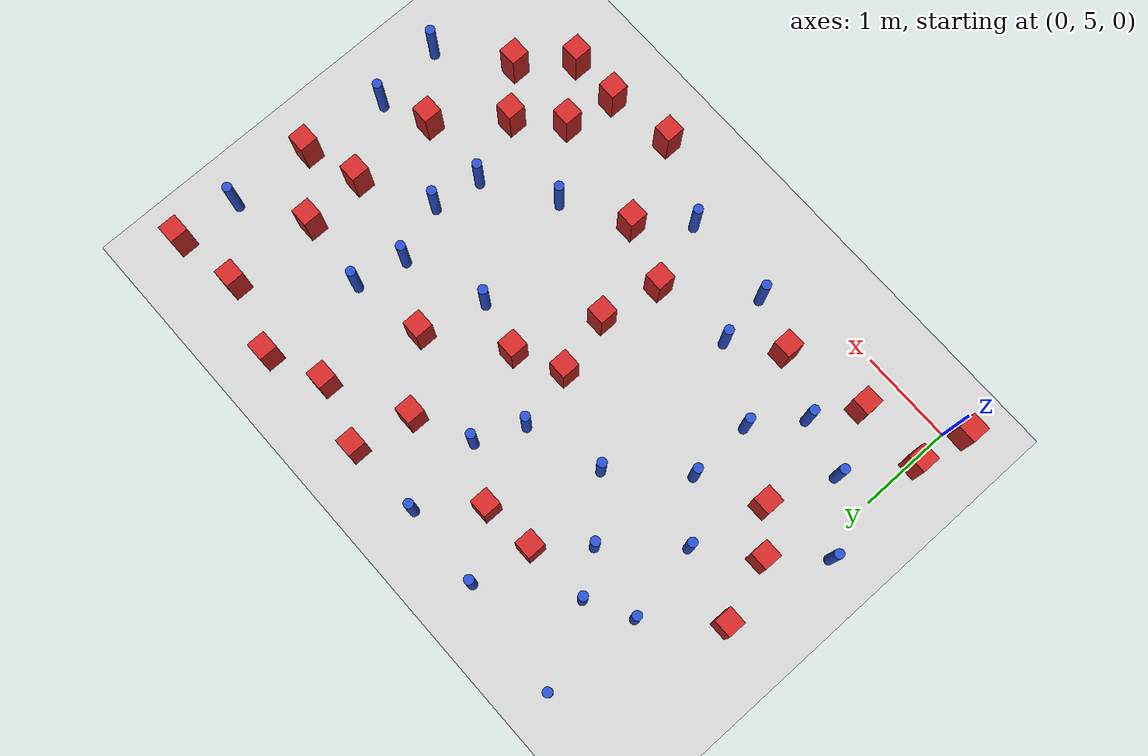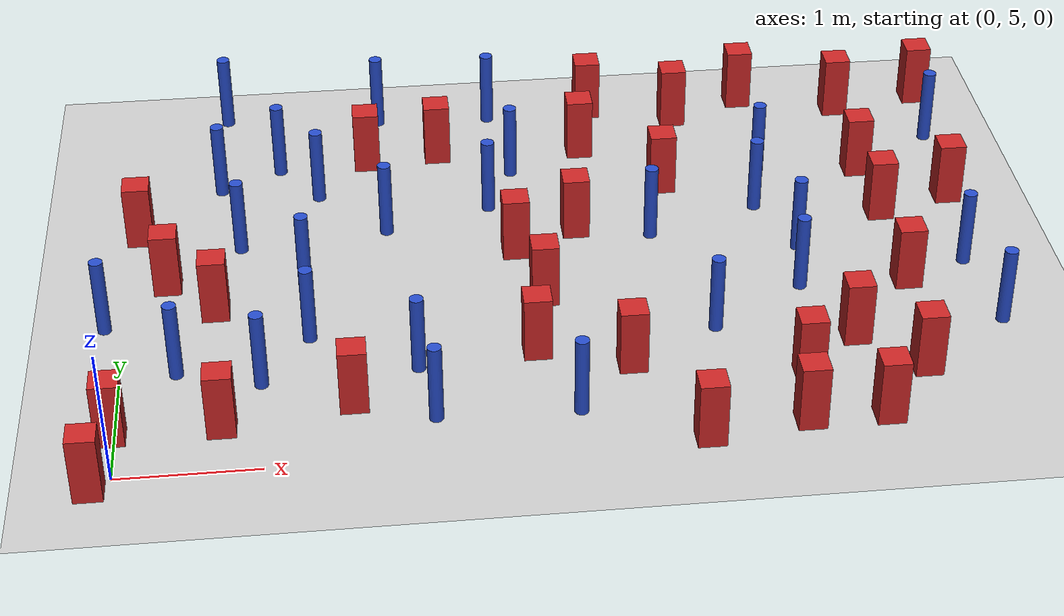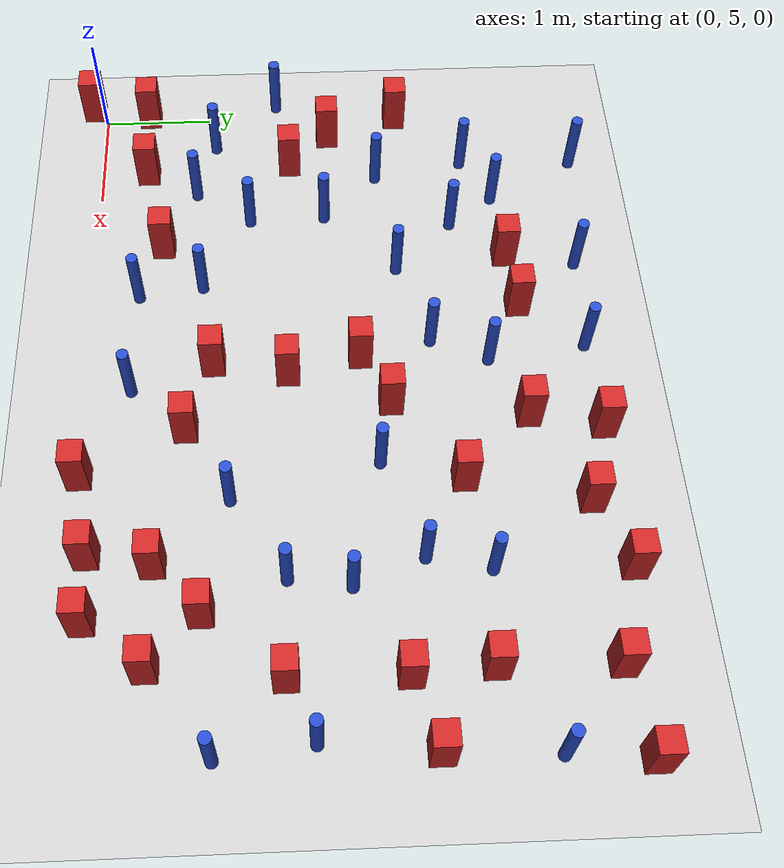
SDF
<sdf version="1.6">
 <world name="default">
  <model name="ground_plane">
   <static>1</static>
   <link name="link">
    <collision name="collision">
     <geometry><plane><normal>0 0 1</normal><size>100 100</size></plane></geometry>
     <surface><friction><ode><mu>100</mu><mu2>50</mu2></ode></friction></surface>
    </collision>
    <visual name="visual">
     <cast_shadows>0</cast_shadows>
     <geometry><plane><normal>0 0 1</normal><size>100 100</size></plane></geometry>
     <material>
      <ambient>1.0 1.0 1.0 1.0</ambient>
      <diffuse>0.8 0.8 0.8 1.0</diffuse>
      <specular>0.01 0.01 0.01 1.000000</specular>
     </material>
    </visual>
   </link>
  </model>
  <model name="pole_obstacle2">
   <static>true</static>
   <pose>2.07751800171 5.97733146448 2.88873142074e-08 -9.90536689859e-09 4.60219948989e-07 -1.20965994961e-07</pose>
   <link name="link">
    <pose>0 0 0.3 0 -0 0</pose>
    <inertial>
     <mass>1</mass>
     <inertia><ixx>0.145833</ixx><ixy>0</ixy><ixz>0</ixz><iyy>0.145833</iyy><iyz>0</iyz><izz>0.125</izz></inertia>
    </inertial>
    <collision name="collision">
     <geometry><cylinder><radius>0.05</radius><length>.6</length></cylinder></geometry>
    </collision>
    <visual name="visual">
     <geometry><cylinder><radius>0.05</radius><length>.6</length></cylinder></geometry>
     <material>
      <script><name>Gazebo/Blue</name><uri>file://media/materials/scripts/gazebo.material</uri></script>
     </material>
    </visual>
   </link>
  </model>
  <model name="square_post_obstacle4">
   <static>true</static>
   <pose>-0.0230214975011 5.42789947488 8.22691968438e-08 7.22125133819e-06 -7.54495500217e-07 2.29674213826e-05</pose>
   <link name="link">
    <pose>0 0 0.25 0 -0 0</pose>
    <inertial>
     <mass>100</mass>
     <inertia>
      <ixx>0.166667</ixx>
      <ixy>0</ixy>
      <ixz>0</ixz>
      <iyy>0.166667</iyy>
      <iyz>0</iyz>
      <izz>0.166667</izz>
     </inertia>
    </inertial>
    <collision name="collision"><geometry><box><size>.2 .2 .5</size></box></geometry></collision>
    <visual name="visual">
     <geometry><box><size>.2 .2 .5</size></box></geometry>
     <material>
      <script><name>Gazebo/Red</name><uri>file://media/materials/scripts/gazebo.material</uri></script>
     </material>
    </visual>
   </link>
  </model>
  <model name="pole_obstacle5">
   <static>true</static>
   <pose>1.32508364615 6.40722247907 2.88873142074e-08 -9.90536689852e-09 4.60219948989e-07 -1.2096599496e-07</pose>
   <link name="link">
    <pose>0 0 0.3 0 -0 0</pose>
    <inertial>
     <mass>1</mass>
     <inertia><ixx>0.145833</ixx><ixy>0</ixy><ixz>0</ixz><iyy>0.145833</iyy><iyz>0</iyz><izz>0.125</izz></inertia>
    </inertial>
    <collision name="collision">
     <geometry><cylinder><radius>0.05</radius><length>.6</length></cylinder></geometry>
    </collision>
    <visual name="visual">
     <geometry><cylinder><radius>0.05</radius><length>.6</length></cylinder></geometry>
     <material>
      <script><name>Gazebo/Blue</name><uri>file://media/materials/scripts/gazebo.material</uri></script>
     </material>
    </visual>
   </link>
  </model>
  <model name="pole_obstacle6">
   <static>true</static>
   <pose>1.93231918267 7.72622487613 2.88873142074e-08 -9.90536689852e-09 4.60219948989e-07 -1.2096599496e-07</pose>
   <link name="link">
    <pose>0 0 0.3 0 -0 0</pose>
    <inertial>
     <mass>1</mass>
     <inertia><ixx>0.145833</ixx><ixy>0</ixy><ixz>0</ixz><iyy>0.145833</iyy><iyz>0</iyz><izz>0.125</izz></inertia>
    </inertial>
    <collision name="collision">
     <geometry><cylinder><radius>0.05</radius><length>.6</length></cylinder></geometry>
    </collision>
    <visual name="visual">
     <geometry><cylinder><radius>0.05</radius><length>.6</length></cylinder></geometry>
     <material>
      <script><name>Gazebo/Blue</name><uri>file://media/materials/scripts/gazebo.material</uri></script>
     </material>
    </visual>
   </link>
  </model>
  <model name="square_post_obstacle13">
   <static>true</static>
   <pose>1.82181593819 8.7151289453 8.22691968438e-08 7.22125133819e-06 -7.54495500217e-07 2.29674213826e-05</pose>
   <link name="link">
    <pose>0 0 0.25 0 -0 0</pose>
    <inertial>
     <mass>100</mass>
     <inertia>
      <ixx>0.166667</ixx>
      <ixy>0</ixy>
      <ixz>0</ixz>
      <iyy>0.166667</iyy>
      <iyz>0</iyz>
      <izz>0.166667</izz>
     </inertia>
    </inertial>
    <collision name="collision"><geometry><box><size>.2 .2 .5</size></box></geometry></collision>
    <visual name="visual">
     <geometry><box><size>.2 .2 .5</size></box></geometry>
     <material>
      <script><name>Gazebo/Red</name><uri>file://media/materials/scripts/gazebo.material</uri></script>
     </material>
    </visual>
   </link>
  </model>
  <model name="square_post_obstacle17">
   <static>true</static>
   <pose>0.65483960181 6.78613451432 8.22691968438e-08 7.2212513382e-06 -7.54495500217e-07 2.29674213826e-05</pose>
   <link name="link">
    <pose>0 0 0.25 0 -0 0</pose>
    <inertial>
     <mass>100</mass>
     <inertia>
      <ixx>0.166667</ixx>
      <ixy>0</ixy>
      <ixz>0</ixz>
      <iyy>0.166667</iyy>
      <iyz>0</iyz>
      <izz>0.166667</izz>
     </inertia>
    </inertial>
    <collision name="collision"><geometry><box><size>.2 .2 .5</size></box></geometry></collision>
    <visual name="visual">
     <geometry><box><size>.2 .2 .5</size></box></geometry>
     <material>
      <script><name>Gazebo/Red</name><uri>file://media/materials/scripts/gazebo.material</uri></script>
     </material>
    </visual>
   </link>
  </model>
  <model name="square_post_obstacle23">
   <static>true</static>
   <pose>4.68276450183 5.10691720269 8.22691968438e-08 7.2212513382e-06 -7.54495500217e-07 2.29674213826e-05</pose>
   <link name="link">
    <pose>0 0 0.25 0 -0 0</pose>
    <inertial>
     <mass>100</mass>
     <inertia>
      <ixx>0.166667</ixx>
      <ixy>0</ixy>
      <ixz>0</ixz>
      <iyy>0.166667</iyy>
      <iyz>0</iyz>
      <izz>0.166667</izz>
     </inertia>
    </inertial>
    <collision name="collision"><geometry><box><size>.2 .2 .5</size></box></geometry></collision>
    <visual name="visual">
     <geometry><box><size>.2 .2 .5</size></box></geometry>
     <material>
      <script><name>Gazebo/Red</name><uri>file://media/materials/scripts/gazebo.material</uri></script>
     </material>
    </visual>
   </link>
  </model>
  <model name="pole_obstacle19">
   <static>true</static>
   <pose>3.15353701961 5.38212913449 2.88873142074e-08 -9.90536689859e-09 4.60219948989e-07 -1.20965994961e-07</pose>
   <link name="link">
    <pose>0 0 0.3 0 -0 0</pose>
    <inertial>
     <mass>1</mass>
     <inertia><ixx>0.145833</ixx><ixy>0</ixy><ixz>0</ixz><iyy>0.145833</iyy><iyz>0</iyz><izz>0.125</izz></inertia>
    </inertial>
    <collision name="collision">
     <geometry><cylinder><radius>0.05</radius><length>.6</length></cylinder></geometry>
    </collision>
    <visual name="visual">
     <geometry><cylinder><radius>0.05</radius><length>.6</length></cylinder></geometry>
     <material>
      <script><name>Gazebo/Blue</name><uri>file://media/materials/scripts/gazebo.material</uri></script>
     </material>
    </visual>
   </link>
  </model>
  <model name="square_post_obstacle32">
   <static>true</static>
   <pose>3.97822362959 4.99952866251 8.22691968438e-08 7.2212513382e-06 -7.54495500217e-07 2.29674213826e-05</pose>
   <link name="link">
    <pose>0 0 0.25 0 -0 0</pose>
    <inertial>
     <mass>100</mass>
     <inertia>
      <ixx>0.166667</ixx>
      <ixy>0</ixy>
      <ixz>0</ixz>
      <iyy>0.166667</iyy>
      <iyz>0</iyz>
      <izz>0.166667</izz>
     </inertia>
    </inertial>
    <collision name="collision"><geometry><box><size>.2 .2 .5</size></box></geometry></collision>
    <visual name="visual">
     <geometry><box><size>.2 .2 .5</size></box></geometry>
     <material>
      <script><name>Gazebo/Red</name><uri>file://media/materials/scripts/gazebo.material</uri></script>
     </material>
    </visual>
   </link>
  </model>
  <model name="square_post_obstacle51">
   <static>true</static>
   <pose>3.0394977059 6.72533661205 8.22691968438e-08 7.2212513382e-06 -7.54495500217e-07 2.29674213826e-05</pose>
   <link name="link">
    <pose>0 0 0.25 0 -0 0</pose>
    <inertial>
     <mass>100</mass>
     <inertia>
      <ixx>0.166667</ixx>
      <ixy>0</ixy>
      <ixz>0</ixz>
      <iyy>0.166667</iyy>
      <iyz>0</iyz>
      <izz>0.166667</izz>
     </inertia>
    </inertial>
    <collision name="collision"><geometry><box><size>.2 .2 .5</size></box></geometry></collision>
    <visual name="visual">
     <geometry><box><size>.2 .2 .5</size></box></geometry>
     <material>
      <script><name>Gazebo/Red</name><uri>file://media/materials/scripts/gazebo.material</uri></script>
     </material>
    </visual>
   </link>
  </model>
  <model name="pole_obstacle53">
   <static>true</static>
   <pose>4.78237646165 7.77168306923 2.88873142074e-08 -9.90536690842e-09 4.60219948965e-07 -1.20965994976e-07</pose>
   <link name="link">
    <pose>0 0 0.3 0 -0 0</pose>
    <inertial>
     <mass>1</mass>
     <inertia><ixx>0.145833</ixx><ixy>0</ixy><ixz>0</ixz><iyy>0.145833</iyy><iyz>0</iyz><izz>0.125</izz></inertia>
    </inertial>
    <collision name="collision">
     <geometry><cylinder><radius>0.05</radius><length>.6</length></cylinder></geometry>
    </collision>
    <visual name="visual">
     <geometry><cylinder><radius>0.05</radius><length>.6</length></cylinder></geometry>
     <material>
      <script><name>Gazebo/Blue</name><uri>file://media/materials/scripts/gazebo.material</uri></script>
     </material>
    </visual>
   </link>
  </model>
  <model name="square_post_obstacle57">
   <static>true</static>
   <pose>3.5673597654 5.85975031929 8.22691968438e-08 7.2212513382e-06 -7.54495500217e-07 2.29674213826e-05</pose>
   <link name="link">
    <pose>0 0 0.25 0 -0 0</pose>
    <inertial>
     <mass>100</mass>
     <inertia>
      <ixx>0.166667</ixx>
      <ixy>0</ixy>
      <ixz>0</ixz>
      <iyy>0.166667</iyy>
      <iyz>0</iyz>
      <izz>0.166667</izz>
     </inertia>
    </inertial>
    <collision name="collision"><geometry><box><size>.2 .2 .5</size></box></geometry></collision>
    <visual name="visual">
     <geometry><box><size>.2 .2 .5</size></box></geometry>
     <material>
      <script><name>Gazebo/Red</name><uri>file://media/materials/scripts/gazebo.material</uri></script>
     </material>
    </visual>
   </link>
  </model>
  <model name="square_post_obstacle59">
   <static>true</static>
   <pose>5.72613425645 7.58430285339 8.22691968438e-08 7.2212513382e-06 -7.54495500217e-07 2.29674213826e-05</pose>
   <link name="link">
    <pose>0 0 0.25 0 -0 0</pose>
    <inertial>
     <mass>100</mass>
     <inertia>
      <ixx>0.166667</ixx>
      <ixy>0</ixy>
      <ixz>0</ixz>
      <iyy>0.166667</iyy>
      <iyz>0</iyz>
      <izz>0.166667</izz>
     </inertia>
    </inertial>
    <collision name="collision"><geometry><box><size>.2 .2 .5</size></box></geometry></collision>
    <visual name="visual">
     <geometry><box><size>.2 .2 .5</size></box></geometry>
     <material>
      <script><name>Gazebo/Red</name><uri>file://media/materials/scripts/gazebo.material</uri></script>
     </material>
    </visual>
   </link>
  </model>
  <model name="pole_obstacle57">
   <static>true</static>
   <pose>3.92585107874 7.46655053736 2.88873142074e-08 -9.90536689859e-09 4.60219948989e-07 -1.20965994961e-07</pose>
   <link name="link">
    <pose>0 0 0.3 0 -0 0</pose>
    <inertial>
     <mass>1</mass>
     <inertia><ixx>0.145833</ixx><ixy>0</ixy><ixz>0</ixz><iyy>0.145833</iyy><iyz>0</iyz><izz>0.125</izz></inertia>
    </inertial>
    <collision name="collision">
     <geometry><cylinder><radius>0.05</radius><length>.6</length></cylinder></geometry>
    </collision>
    <visual name="visual">
     <geometry><cylinder><radius>0.05</radius><length>.6</length></cylinder></geometry>
     <material>
      <script><name>Gazebo/Blue</name><uri>file://media/materials/scripts/gazebo.material</uri></script>
     </material>
    </visual>
   </link>
  </model>
  <model name="pole_obstacle62">
   <static>true</static>
   <pose>0.392738603074 6.07941229914 2.88873142074e-08 -9.90536689683e-09 4.60219948993e-07 -1.20965994957e-07</pose>
   <link name="link">
    <pose>0 0 0.3 0 -0 0</pose>
    <inertial>
     <mass>1</mass>
     <inertia><ixx>0.145833</ixx><ixy>0</ixy><ixz>0</ixz><iyy>0.145833</iyy><iyz>0</iyz><izz>0.125</izz></inertia>
    </inertial>
    <collision name="collision">
     <geometry><cylinder><radius>0.05</radius><length>.6</length></cylinder></geometry>
    </collision>
    <visual name="visual">
     <geometry><cylinder><radius>0.05</radius><length>.6</length></cylinder></geometry>
     <material>
      <script><name>Gazebo/Blue</name><uri>file://media/materials/scripts/gazebo.material</uri></script>
     </material>
    </visual>
   </link>
  </model>
  <model name="pole_obstacle65">
   <static>true</static>
   <pose>0.709715411998 9.47757860078 2.88873142074e-08 -9.90536690779e-09 4.60219948967e-07 -1.20965994975e-07</pose>
   <link name="link">
    <pose>0 0 0.3 0 -0 0</pose>
    <inertial>
     <mass>1</mass>
     <inertia><ixx>0.145833</ixx><ixy>0</ixy><ixz>0</ixz><iyy>0.145833</iyy><iyz>0</iyz><izz>0.125</izz></inertia>
    </inertial>
    <collision name="collision">
     <geometry><cylinder><radius>0.05</radius><length>.6</length></cylinder></geometry>
    </collision>
    <visual name="visual">
     <geometry><cylinder><radius>0.05</radius><length>.6</length></cylinder></geometry>
     <material>
      <script><name>Gazebo/Blue</name><uri>file://media/materials/scripts/gazebo.material</uri></script>
     </material>
    </visual>
   </link>
  </model>
  <model name="pole_obstacle69">
   <static>true</static>
   <pose>2.73239671398 7.97262630561 2.88873142074e-08 -9.90536689866e-09 4.60219948988e-07 -1.20965994962e-07</pose>
   <link name="link">
    <pose>0 0 0.3 0 -0 0</pose>
    <inertial>
     <mass>1</mass>
     <inertia><ixx>0.145833</ixx><ixy>0</ixy><ixz>0</ixz><iyy>0.145833</iyy><iyz>0</iyz><izz>0.125</izz></inertia>
    </inertial>
    <collision name="collision">
     <geometry><cylinder><radius>0.05</radius><length>.6</length></cylinder></geometry>
    </collision>
    <visual name="visual">
     <geometry><cylinder><radius>0.05</radius><length>.6</length></cylinder></geometry>
     <material>
      <script><name>Gazebo/Blue</name><uri>file://media/materials/scripts/gazebo.material</uri></script>
     </material>
    </visual>
   </link>
  </model>
  <model name="pole_obstacle75">
   <static>true</static>
   <pose>4.90165788443 8.29391243555 2.88873142074e-08 -9.9053668967e-09 4.60219948993e-07 -1.20965994957e-07</pose>
   <link name="link">
    <pose>0 0 0.3 0 -0 0</pose>
    <inertial>
     <mass>1</mass>
     <inertia><ixx>0.145833</ixx><ixy>0</ixy><ixz>0</ixz><iyy>0.145833</iyy><iyz>0</iyz><izz>0.125</izz></inertia>
    </inertial>
    <collision name="collision">
     <geometry><cylinder><radius>0.05</radius><length>.6</length></cylinder></geometry>
    </collision>
    <visual name="visual">
     <geometry><cylinder><radius>0.05</radius><length>.6</length></cylinder></geometry>
     <material>
      <script><name>Gazebo/Blue</name><uri>file://media/materials/scripts/gazebo.material</uri></script>
     </material>
    </visual>
   </link>
  </model>
  <model name="pole_obstacle77">
   <static>true</static>
   <pose>1.93530498515 9.35324967003 2.88873142074e-08 -9.90536690474e-09 4.60219948974e-07 -1.2096599497e-07</pose>
   <link name="link">
    <pose>0 0 0.3 0 -0 0</pose>
    <inertial>
     <mass>1</mass>
     <inertia><ixx>0.145833</ixx><ixy>0</ixy><ixz>0</ixz><iyy>0.145833</iyy><iyz>0</iyz><izz>0.125</izz></inertia>
    </inertial>
    <collision name="collision">
     <geometry><cylinder><radius>0.05</radius><length>.6</length></cylinder></geometry>
    </collision>
    <visual name="visual">
     <geometry><cylinder><radius>0.05</radius><length>.6</length></cylinder></geometry>
     <material>
      <script><name>Gazebo/Blue</name><uri>file://media/materials/scripts/gazebo.material</uri></script>
     </material>
    </visual>
   </link>
  </model>
  <model name="pole_obstacle81">
   <static>true</static>
   <pose>4.9270510892 6.68030689159 2.88873142074e-08 -9.90536690842e-09 4.60219948965e-07 -1.20965994976e-07</pose>
   <link name="link">
    <pose>0 0 0.3 0 -0 0</pose>
    <inertial>
     <mass>1</mass>
     <inertia><ixx>0.145833</ixx><ixy>0</ixy><ixz>0</ixz><iyy>0.145833</iyy><iyz>0</iyz><izz>0.125</izz></inertia>
    </inertial>
    <collision name="collision">
     <geometry><cylinder><radius>0.05</radius><length>.6</length></cylinder></geometry>
    </collision>
    <visual name="visual">
     <geometry><cylinder><radius>0.05</radius><length>.6</length></cylinder></geometry>
     <material>
      <script><name>Gazebo/Blue</name><uri>file://media/materials/scripts/gazebo.material</uri></script>
     </material>
    </visual>
   </link>
  </model>
  <model name="pole_obstacle82">
   <static>true</static>
   <pose>0.982436810914 5.9064865035 2.88873142074e-08 -9.90536689421e-09 4.60219948999e-07 -1.20965994953e-07</pose>
   <link name="link">
    <pose>0 0 0.3 0 -0 0</pose>
    <inertial>
     <mass>1</mass>
     <inertia><ixx>0.145833</ixx><ixy>0</ixy><ixz>0</ixz><iyy>0.145833</iyy><iyz>0</iyz><izz>0.125</izz></inertia>
    </inertial>
    <collision name="collision">
     <geometry><cylinder><radius>0.05</radius><length>.6</length></cylinder></geometry>
    </collision>
    <visual name="visual">
     <geometry><cylinder><radius>0.05</radius><length>.6</length></cylinder></geometry>
     <material>
      <script><name>Gazebo/Blue</name><uri>file://media/materials/scripts/gazebo.material</uri></script>
     </material>
    </visual>
   </link>
  </model>
  <model name="pole_obstacle83">
   <static>true</static>
   <pose>6.34977256217 8.65056129445 2.88873142074e-08 -9.9053668967e-09 4.60219948993e-07 -1.20965994957e-07</pose>
   <link name="link">
    <pose>0 0 0.3 0 -0 0</pose>
    <inertial>
     <mass>1</mass>
     <inertia><ixx>0.145833</ixx><ixy>0</ixy><ixz>0</ixz><iyy>0.145833</iyy><iyz>0</iyz><izz>0.125</izz></inertia>
    </inertial>
    <collision name="collision">
     <geometry><cylinder><radius>0.05</radius><length>.6</length></cylinder></geometry>
    </collision>
    <visual name="visual">
     <geometry><cylinder><radius>0.05</radius><length>.6</length></cylinder></geometry>
     <material>
      <script><name>Gazebo/Blue</name><uri>file://media/materials/scripts/gazebo.material</uri></script>
     </material>
    </visual>
   </link>
  </model>
  <model name="pole_obstacle95">
   <static>true</static>
   <pose>2.16450011094 5.40975289306 2.88873142074e-08 -9.90536689859e-09 4.60219948989e-07 -1.20965994961e-07</pose>
   <link name="link">
    <pose>0 0 0.3 0 -0 0</pose>
    <inertial>
     <mass>1</mass>
     <inertia><ixx>0.145833</ixx><ixy>0</ixy><ixz>0</ixz><iyy>0.145833</iyy><iyz>0</iyz><izz>0.125</izz></inertia>
    </inertial>
    <collision name="collision">
     <geometry><cylinder><radius>0.05</radius><length>.6</length></cylinder></geometry>
    </collision>
    <visual name="visual">
     <geometry><cylinder><radius>0.05</radius><length>.6</length></cylinder></geometry>
     <material>
      <script><name>Gazebo/Blue</name><uri>file://media/materials/scripts/gazebo.material</uri></script>
     </material>
    </visual>
   </link>
  </model>
  <model name="pole_obstacle98">
   <static>true</static>
   <pose>2.83179011673 9.31703349555 2.88873142074e-08 -9.90536692318e-09 4.6021994893e-07 -1.20965994988e-07</pose>
   <link name="link">
    <pose>0 0 0.3 0 -0 0</pose>
    <inertial>
     <mass>1</mass>
     <inertia><ixx>0.145833</ixx><ixy>0</ixy><ixz>0</ixz><iyy>0.145833</iyy><iyz>0</iyz><izz>0.125</izz></inertia>
    </inertial>
    <collision name="collision">
     <geometry><cylinder><radius>0.05</radius><length>.6</length></cylinder></geometry>
    </collision>
    <visual name="visual">
     <geometry><cylinder><radius>0.05</radius><length>.6</length></cylinder></geometry>
     <material>
      <script><name>Gazebo/Blue</name><uri>file://media/materials/scripts/gazebo.material</uri></script>
     </material>
    </visual>
   </link>
  </model>
  <model name="pole_obstacle105">
   <static>true</static>
   <pose>4.22287582424 6.23194761758 2.88873142074e-08 -9.90536690842e-09 4.60219948965e-07 -1.20965994976e-07</pose>
   <link name="link">
    <pose>0 0 0.3 0 -0 0</pose>
    <inertial>
     <mass>1</mass>
     <inertia><ixx>0.145833</ixx><ixy>0</ixy><ixz>0</ixz><iyy>0.145833</iyy><iyz>0</iyz><izz>0.125</izz></inertia>
    </inertial>
    <collision name="collision">
     <geometry><cylinder><radius>0.05</radius><length>.6</length></cylinder></geometry>
    </collision>
    <visual name="visual">
     <geometry><cylinder><radius>0.05</radius><length>.6</length></cylinder></geometry>
     <material>
      <script><name>Gazebo/Blue</name><uri>file://media/materials/scripts/gazebo.material</uri></script>
     </material>
    </visual>
   </link>
  </model>
  <model name="square_post_obstacle97">
   <static>true</static>
   <pose>2.38449490779 8.77435600925 8.22691968438e-08 7.22125133819e-06 -7.54495500217e-07 2.29674213826e-05</pose>
   <link name="link">
    <pose>0 0 0.25 0 -0 0</pose>
    <inertial>
     <mass>100</mass>
     <inertia>
      <ixx>0.166667</ixx>
      <ixy>0</ixy>
      <ixz>0</ixz>
      <iyy>0.166667</iyy>
      <iyz>0</iyz>
      <izz>0.166667</izz>
     </inertia>
    </inertial>
    <collision name="collision"><geometry><box><size>.2 .2 .5</size></box></geometry></collision>
    <visual name="visual">
     <geometry><box><size>.2 .2 .5</size></box></geometry>
     <material>
      <script><name>Gazebo/Red</name><uri>file://media/materials/scripts/gazebo.material</uri></script>
     </material>
    </visual>
   </link>
  </model>
  <model name="pole_obstacle111">
   <static>true</static>
   <pose>-0.136774276391 6.66364186366 2.88873142074e-08 -9.90536689816e-09 4.6021994899e-07 -1.20965994961e-07</pose>
   <link name="link">
    <pose>0 0 0.3 0 -0 0</pose>
    <inertial>
     <mass>1</mass>
     <inertia><ixx>0.145833</ixx><ixy>0</ixy><ixz>0</ixz><iyy>0.145833</iyy><iyz>0</iyz><izz>0.125</izz></inertia>
    </inertial>
    <collision name="collision">
     <geometry><cylinder><radius>0.05</radius><length>.6</length></cylinder></geometry>
    </collision>
    <visual name="visual">
     <geometry><cylinder><radius>0.05</radius><length>.6</length></cylinder></geometry>
     <material>
      <script><name>Gazebo/Blue</name><uri>file://media/materials/scripts/gazebo.material</uri></script>
     </material>
    </visual>
   </link>
  </model>
  <model name="pole_obstacle112">
   <static>true</static>
   <pose>1.13340663607 8.67235284381 2.88873142074e-08 -9.90536690474e-09 4.60219948974e-07 -1.2096599497e-07</pose>
   <link name="link">
    <pose>0 0 0.3 0 -0 0</pose>
    <inertial>
     <mass>1</mass>
     <inertia><ixx>0.145833</ixx><ixy>0</ixy><ixz>0</ixz><iyy>0.145833</iyy><iyz>0</iyz><izz>0.125</izz></inertia>
    </inertial>
    <collision name="collision">
     <geometry><cylinder><radius>0.05</radius><length>.6</length></cylinder></geometry>
    </collision>
    <visual name="visual">
     <geometry><cylinder><radius>0.05</radius><length>.6</length></cylinder></geometry>
     <material>
      <script><name>Gazebo/Blue</name><uri>file://media/materials/scripts/gazebo.material</uri></script>
     </material>
    </visual>
   </link>
  </model>
  <model name="pole_obstacle118">
   <static>true</static>
   <pose>6.20872909456 6.87181503256 2.88873142074e-08 -9.90536690842e-09 4.60219948965e-07 -1.20965994976e-07</pose>
   <link name="link">
    <pose>0 0 0.3 0 -0 0</pose>
    <inertial>
     <mass>1</mass>
     <inertia><ixx>0.145833</ixx><ixy>0</ixy><ixz>0</ixz><iyy>0.145833</iyy><iyz>0</iyz><izz>0.125</izz></inertia>
    </inertial>
    <collision name="collision">
     <geometry><cylinder><radius>0.05</radius><length>.6</length></cylinder></geometry>
    </collision>
    <visual name="visual">
     <geometry><cylinder><radius>0.05</radius><length>.6</length></cylinder></geometry>
     <material>
      <script><name>Gazebo/Blue</name><uri>file://media/materials/scripts/gazebo.material</uri></script>
     </material>
    </visual>
   </link>
  </model>
  <model name="square_post_obstacle107">
   <static>true</static>
   <pose>5.68318173254 8.22591805903 8.22691968438e-08 7.22125133819e-06 -7.54495500217e-07 2.29674213826e-05</pose>
   <link name="link">
    <pose>0 0 0.25 0 -0 0</pose>
    <inertial>
     <mass>100</mass>
     <inertia>
      <ixx>0.166667</ixx>
      <ixy>0</ixy>
      <ixz>0</ixz>
      <iyy>0.166667</iyy>
      <iyz>0</iyz>
      <izz>0.166667</izz>
     </inertia>
    </inertial>
    <collision name="collision"><geometry><box><size>.2 .2 .5</size></box></geometry></collision>
    <visual name="visual">
     <geometry><box><size>.2 .2 .5</size></box></geometry>
     <material>
      <script><name>Gazebo/Red</name><uri>file://media/materials/scripts/gazebo.material</uri></script>
     </material>
    </visual>
   </link>
  </model>
  <model name="pole_obstacle136">
   <static>true</static>
   <pose>0.675943462514 8.42280702141 2.88873142074e-08 -9.90536690779e-09 4.60219948967e-07 -1.20965994975e-07</pose>
   <link name="link">
    <pose>0 0 0.3 0 -0 0</pose>
    <inertial>
     <mass>1</mass>
     <inertia><ixx>0.145833</ixx><ixy>0</ixy><ixz>0</ixz><iyy>0.145833</iyy><iyz>0</iyz><izz>0.125</izz></inertia>
    </inertial>
    <collision name="collision">
     <geometry><cylinder><radius>0.05</radius><length>.6</length></cylinder></geometry>
    </collision>
    <visual name="visual">
     <geometry><cylinder><radius>0.05</radius><length>.6</length></cylinder></geometry>
     <material>
      <script><name>Gazebo/Blue</name><uri>file://media/materials/scripts/gazebo.material</uri></script>
     </material>
    </visual>
   </link>
  </model>
  <model name="square_post_obstacle121">
   <static>true</static>
   <pose>0.299298581726 7.15241721492 8.22691968438e-08 7.22125133819e-06 -7.54495500217e-07 2.29674213826e-05</pose>
   <link name="link">
    <pose>0 0 0.25 0 -0 0</pose>
    <inertial>
     <mass>100</mass>
     <inertia>
      <ixx>0.166667</ixx>
      <ixy>0</ixy>
      <ixz>0</ixz>
      <iyy>0.166667</iyy>
      <iyz>0</iyz>
      <izz>0.166667</izz>
     </inertia>
    </inertial>
    <collision name="collision"><geometry><box><size>.2 .2 .5</size></box></geometry></collision>
    <visual name="visual">
     <geometry><box><size>.2 .2 .5</size></box></geometry>
     <material>
      <script><name>Gazebo/Red</name><uri>file://media/materials/scripts/gazebo.material</uri></script>
     </material>
    </visual>
   </link>
  </model>
  <model name="square_post_obstacle128">
   <static>true</static>
   <pose>5.19394275447 6.01625850763 8.22691968438e-08 7.2212513382e-06 -7.54495500217e-07 2.29674213826e-05</pose>
   <link name="link">
    <pose>0 0 0.25 0 -0 0</pose>
    <inertial>
     <mass>100</mass>
     <inertia>
      <ixx>0.166667</ixx>
      <ixy>0</ixy>
      <ixz>0</ixz>
      <iyy>0.166667</iyy>
      <iyz>0</iyz>
      <izz>0.166667</izz>
     </inertia>
    </inertial>
    <collision name="collision"><geometry><box><size>.2 .2 .5</size></box></geometry></collision>
    <visual name="visual">
     <geometry><box><size>.2 .2 .5</size></box></geometry>
     <material>
      <script><name>Gazebo/Red</name><uri>file://media/materials/scripts/gazebo.material</uri></script>
     </material>
    </visual>
   </link>
  </model>
  <model name="pole_obstacle146">
   <static>true</static>
   <pose>1.42985087556 8.25778762813 2.88873142074e-08 -9.90536690474e-09 4.60219948974e-07 -1.2096599497e-07</pose>
   <link name="link">
    <pose>0 0 0.3 0 -0 0</pose>
    <inertial>
     <mass>1</mass>
     <inertia><ixx>0.145833</ixx><ixy>0</ixy><ixz>0</ixz><iyy>0.145833</iyy><iyz>0</iyz><izz>0.125</izz></inertia>
    </inertial>
    <collision name="collision">
     <geometry><cylinder><radius>0.05</radius><length>.6</length></cylinder></geometry>
    </collision>
    <visual name="visual">
     <geometry><cylinder><radius>0.05</radius><length>.6</length></cylinder></geometry>
     <material>
      <script><name>Gazebo/Blue</name><uri>file://media/materials/scripts/gazebo.material</uri></script>
     </material>
    </visual>
   </link>
  </model>
  <model name="square_post_obstacle145">
   <static>true</static>
   <pose>3.65474087346 9.34761919683 8.22691968438e-08 7.22125133819e-06 -7.54495500217e-07 2.29674213826e-05</pose>
   <link name="link">
    <pose>0 0 0.25 0 -0 0</pose>
    <inertial>
     <mass>100</mass>
     <inertia>
      <ixx>0.166667</ixx>
      <ixy>0</ixy>
      <ixz>0</ixz>
      <iyy>0.166667</iyy>
      <iyz>0</iyz>
      <izz>0.166667</izz>
     </inertia>
    </inertial>
    <collision name="collision"><geometry><box><size>.2 .2 .5</size></box></geometry></collision>
    <visual name="visual">
     <geometry><box><size>.2 .2 .5</size></box></geometry>
     <material>
      <script><name>Gazebo/Red</name><uri>file://media/materials/scripts/gazebo.material</uri></script>
     </material>
    </visual>
   </link>
  </model>
  <model name="pole_obstacle156">
   <static>true</static>
   <pose>6.30064787182 6.10910929019 2.88873142074e-08 -9.90536690842e-09 4.60219948965e-07 -1.20965994976e-07</pose>
   <link name="link">
    <pose>0 0 0.3 0 -0 0</pose>
    <inertial>
     <mass>1</mass>
     <inertia><ixx>0.145833</ixx><ixy>0</ixy><ixz>0</ixz><iyy>0.145833</iyy><iyz>0</iyz><izz>0.125</izz></inertia>
    </inertial>
    <collision name="collision">
     <geometry><cylinder><radius>0.05</radius><length>.6</length></cylinder></geometry>
    </collision>
    <visual name="visual">
     <geometry><cylinder><radius>0.05</radius><length>.6</length></cylinder></geometry>
     <material>
      <script><name>Gazebo/Blue</name><uri>file://media/materials/scripts/gazebo.material</uri></script>
     </material>
    </visual>
   </link>
  </model>
  <model name="pole_obstacle162">
   <static>true</static>
   <pose>5.00784704349 7.18901620646 2.88873142074e-08 -9.90536690842e-09 4.60219948965e-07 -1.20965994976e-07</pose>
   <link name="link">
    <pose>0 0 0.3 0 -0 0</pose>
    <inertial>
     <mass>1</mass>
     <inertia><ixx>0.145833</ixx><ixy>0</ixy><ixz>0</ixz><iyy>0.145833</iyy><iyz>0</iyz><izz>0.125</izz></inertia>
    </inertial>
    <collision name="collision">
     <geometry><cylinder><radius>0.05</radius><length>.6</length></cylinder></geometry>
    </collision>
    <visual name="visual">
     <geometry><cylinder><radius>0.05</radius><length>.6</length></cylinder></geometry>
     <material>
      <script><name>Gazebo/Blue</name><uri>file://media/materials/scripts/gazebo.material</uri></script>
     </material>
    </visual>
   </link>
  </model>
  <model name="square_post_obstacle163">
   <static>true</static>
   <pose>3.362796244 7.58754872633 8.22691968438e-08 7.2212513382e-06 -7.54495500217e-07 2.29674213826e-05</pose>
   <link name="link">
    <pose>0 0 0.25 0 -0 0</pose>
    <inertial>
     <mass>100</mass>
     <inertia>
      <ixx>0.166667</ixx>
      <ixy>0</ixy>
      <ixz>0</ixz>
      <iyy>0.166667</iyy>
      <iyz>0</iyz>
      <izz>0.166667</izz>
     </inertia>
    </inertial>
    <collision name="collision"><geometry><box><size>.2 .2 .5</size></box></geometry></collision>
    <visual name="visual">
     <geometry><box><size>.2 .2 .5</size></box></geometry>
     <material>
      <script><name>Gazebo/Red</name><uri>file://media/materials/scripts/gazebo.material</uri></script>
     </material>
    </visual>
   </link>
  </model>
  <model name="square_post_obstacle165">
   <static>true</static>
   <pose>0.073866533694 7.81908272592 8.22691968438e-08 7.2212513382e-06 -7.54495500217e-07 2.29674213826e-05</pose>
   <link name="link">
    <pose>0 0 0.25 0 -0 0</pose>
    <inertial>
     <mass>100</mass>
     <inertia>
      <ixx>0.166667</ixx>
      <ixy>0</ixy>
      <ixz>0</ixz>
      <iyy>0.166667</iyy>
      <iyz>0</iyz>
      <izz>0.166667</izz>
     </inertia>
    </inertial>
    <collision name="collision"><geometry><box><size>.2 .2 .5</size></box></geometry></collision>
    <visual name="visual">
     <geometry><box><size>.2 .2 .5</size></box></geometry>
     <material>
      <script><name>Gazebo/Red</name><uri>file://media/materials/scripts/gazebo.material</uri></script>
     </material>
    </visual>
   </link>
  </model>
  <model name="pole_obstacle177">
   <static>true</static>
   <pose>1.30187734715 7.09427205989 2.88873142074e-08 -9.90536689852e-09 4.60219948989e-07 -1.2096599496e-07</pose>
   <link name="link">
    <pose>0 0 0.3 0 -0 0</pose>
    <inertial>
     <mass>1</mass>
     <inertia><ixx>0.145833</ixx><ixy>0</ixy><ixz>0</ixz><iyy>0.145833</iyy><iyz>0</iyz><izz>0.125</izz></inertia>
    </inertial>
    <collision name="collision">
     <geometry><cylinder><radius>0.05</radius><length>.6</length></cylinder></geometry>
    </collision>
    <visual name="visual">
     <geometry><cylinder><radius>0.05</radius><length>.6</length></cylinder></geometry>
     <material>
      <script><name>Gazebo/Blue</name><uri>file://media/materials/scripts/gazebo.material</uri></script>
     </material>
    </visual>
   </link>
  </model>
  <model name="pole_obstacle182">
   <static>true</static>
   <pose>0.831002145692 7.59641868921 2.88873142074e-08 -9.90536689661e-09 4.60219948993e-07 -1.20965994957e-07</pose>
   <link name="link">
    <pose>0 0 0.3 0 -0 0</pose>
    <inertial>
     <mass>1</mass>
     <inertia><ixx>0.145833</ixx><ixy>0</ixy><ixz>0</ixz><iyy>0.145833</iyy><iyz>0</iyz><izz>0.125</izz></inertia>
    </inertial>
    <collision name="collision">
     <geometry><cylinder><radius>0.05</radius><length>.6</length></cylinder></geometry>
    </collision>
    <visual name="visual">
     <geometry><cylinder><radius>0.05</radius><length>.6</length></cylinder></geometry>
     <material>
      <script><name>Gazebo/Blue</name><uri>file://media/materials/scripts/gazebo.material</uri></script>
     </material>
    </visual>
   </link>
  </model>
  <model name="square_post_obstacle172">
   <static>true</static>
   <pose>5.72015279218 6.65810227091 8.22691968438e-08 7.2212513382e-06 -7.54495500217e-07 2.29674213826e-05</pose>
   <link name="link">
    <pose>0 0 0.25 0 -0 0</pose>
    <inertial>
     <mass>100</mass>
     <inertia>
      <ixx>0.166667</ixx>
      <ixy>0</ixy>
      <ixz>0</ixz>
      <iyy>0.166667</iyy>
      <iyz>0</iyz>
      <izz>0.166667</izz>
     </inertia>
    </inertial>
    <collision name="collision"><geometry><box><size>.2 .2 .5</size></box></geometry></collision>
    <visual name="visual">
     <geometry><box><size>.2 .2 .5</size></box></geometry>
     <material>
      <script><name>Gazebo/Red</name><uri>file://media/materials/scripts/gazebo.material</uri></script>
     </material>
    </visual>
   </link>
  </model>
  <model name="square_post_obstacle177">
   <static>true</static>
   <pose>4.77842993445 5.63209008996 8.22691968438e-08 7.2212513382e-06 -7.54495500217e-07 2.29674213826e-05</pose>
   <link name="link">
    <pose>0 0 0.25 0 -0 0</pose>
    <inertial>
     <mass>100</mass>
     <inertia>
      <ixx>0.166667</ixx>
      <ixy>0</ixy>
      <ixz>0</ixz>
      <iyy>0.166667</iyy>
      <iyz>0</iyz>
      <izz>0.166667</izz>
     </inertia>
    </inertial>
    <collision name="collision"><geometry><box><size>.2 .2 .5</size></box></geometry></collision>
    <visual name="visual">
     <geometry><box><size>.2 .2 .5</size></box></geometry>
     <material>
      <script><name>Gazebo/Red</name><uri>file://media/materials/scripts/gazebo.material</uri></script>
     </material>
    </visual>
   </link>
  </model>
  <model name="square_post_obstacle179">
   <static>true</static>
   <pose>0.718105190253 5.44007053577 8.22691968438e-08 7.2212513382e-06 -7.54495500217e-07 2.29674213826e-05</pose>
   <link name="link">
    <pose>0 0 0.25 0 -0 0</pose>
    <inertial>
     <mass>100</mass>
     <inertia>
      <ixx>0.166667</ixx>
      <ixy>0</ixy>
      <ixz>0</ixz>
      <iyy>0.166667</iyy>
      <iyz>0</iyz>
      <izz>0.166667</izz>
     </inertia>
    </inertial>
    <collision name="collision"><geometry><box><size>.2 .2 .5</size></box></geometry></collision>
    <visual name="visual">
     <geometry><box><size>.2 .2 .5</size></box></geometry>
     <material>
      <script><name>Gazebo/Red</name><uri>file://media/materials/scripts/gazebo.material</uri></script>
     </material>
    </visual>
   </link>
  </model>
  <model name="square_post_obstacle180">
   <static>true</static>
   <pose>4.92473092941 9.38798669857 8.22691968438e-08 7.22125133819e-06 -7.54495500217e-07 2.29674213826e-05</pose>
   <link name="link">
    <pose>0 0 0.25 0 -0 0</pose>
    <inertial>
     <mass>100</mass>
     <inertia>
      <ixx>0.166667</ixx>
      <ixy>0</ixy>
      <ixz>0</ixz>
      <iyy>0.166667</iyy>
      <iyz>0</iyz>
      <izz>0.166667</izz>
     </inertia>
    </inertial>
    <collision name="collision"><geometry><box><size>.2 .2 .5</size></box></geometry></collision>
    <visual name="visual">
     <geometry><box><size>.2 .2 .5</size></box></geometry>
     <material>
      <script><name>Gazebo/Red</name><uri>file://media/materials/scripts/gazebo.material</uri></script>
     </material>
    </visual>
   </link>
  </model>
  <model name="square_post_obstacle184">
   <static>true</static>
   <pose>6.40837607665 9.30122928815 8.22691968438e-08 7.22125133819e-06 -7.54495500217e-07 2.29674213826e-05</pose>
   <link name="link">
    <pose>0 0 0.25 0 -0 0</pose>
    <inertial>
     <mass>100</mass>
     <inertia>
      <ixx>0.166667</ixx>
      <ixy>0</ixy>
      <ixz>0</ixz>
      <iyy>0.166667</iyy>
      <iyz>0</iyz>
      <izz>0.166667</izz>
     </inertia>
    </inertial>
    <collision name="collision"><geometry><box><size>.2 .2 .5</size></box></geometry></collision>
    <visual name="visual">
     <geometry><box><size>.2 .2 .5</size></box></geometry>
     <material>
      <script><name>Gazebo/Red</name><uri>file://media/materials/scripts/gazebo.material</uri></script>
     </material>
    </visual>
   </link>
  </model>
  <model name="square_post_obstacle195">
   <static>true</static>
   <pose>2.91956148064 6.08401730229 8.22691968438e-08 7.2212513382e-06 -7.54495500217e-07 2.29674213826e-05</pose>
   <link name="link">
    <pose>0 0 0.25 0 -0 0</pose>
    <inertial>
     <mass>100</mass>
     <inertia>
      <ixx>0.166667</ixx>
      <ixy>0</ixy>
      <ixz>0</ixz>
      <iyy>0.166667</iyy>
      <iyz>0</iyz>
      <izz>0.166667</izz>
     </inertia>
    </inertial>
    <collision name="collision"><geometry><box><size>.2 .2 .5</size></box></geometry></collision>
    <visual name="visual">
     <geometry><box><size>.2 .2 .5</size></box></geometry>
     <material>
      <script><name>Gazebo/Red</name><uri>file://media/materials/scripts/gazebo.material</uri></script>
     </material>
    </visual>
   </link>
  </model>
  <model name="square_post_obstacle202">
   <static>true</static>
   <pose>4.33784635169 9.14554914576 8.22691968438e-08 7.22125133819e-06 -7.54495500217e-07 2.29674213826e-05</pose>
   <link name="link">
    <pose>0 0 0.25 0 -0 0</pose>
    <inertial>
     <mass>100</mass>
     <inertia>
      <ixx>0.166667</ixx>
      <ixy>0</ixy>
      <ixz>0</ixz>
      <iyy>0.166667</iyy>
      <iyz>0</iyz>
      <izz>0.166667</izz>
     </inertia>
    </inertial>
    <collision name="collision"><geometry><box><size>.2 .2 .5</size></box></geometry></collision>
    <visual name="visual">
     <geometry><box><size>.2 .2 .5</size></box></geometry>
     <material>
      <script><name>Gazebo/Red</name><uri>file://media/materials/scripts/gazebo.material</uri></script>
     </material>
    </visual>
   </link>
  </model>
  <model name="pole_obstacle189">
   <static>true</static>
   <pose>2.9477063058 8.46302268001 2.88873142074e-08 -9.90536692318e-09 4.6021994893e-07 -1.20965994988e-07</pose>
   <link name="link">
    <pose>0 0 0.3 0 -0 0</pose>
    <inertial>
     <mass>1</mass>
     <inertia><ixx>0.145833</ixx><ixy>0</ixy><ixz>0</ixz><iyy>0.145833</iyy><iyz>0</iyz><izz>0.125</izz></inertia>
    </inertial>
    <collision name="collision">
     <geometry><cylinder><radius>0.05</radius><length>.6</length></cylinder></geometry>
    </collision>
    <visual name="visual">
     <geometry><cylinder><radius>0.05</radius><length>.6</length></cylinder></geometry>
     <material>
      <script><name>Gazebo/Blue</name><uri>file://media/materials/scripts/gazebo.material</uri></script>
     </material>
    </visual>
   </link>
  </model>
  <model name="square_post_obstacle207">
   <static>true</static>
   <pose>5.61233334326 5.60586440292 8.22691968438e-08 7.2212513382e-06 -7.54495500217e-07 2.29674213826e-05</pose>
   <link name="link">
    <pose>0 0 0.25 0 -0 0</pose>
    <inertial>
     <mass>100</mass>
     <inertia>
      <ixx>0.166667</ixx>
      <ixy>0</ixy>
      <ixz>0</ixz>
      <iyy>0.166667</iyy>
      <iyz>0</iyz>
      <izz>0.166667</izz>
     </inertia>
    </inertial>
    <collision name="collision"><geometry><box><size>.2 .2 .5</size></box></geometry></collision>
    <visual name="visual">
     <geometry><box><size>.2 .2 .5</size></box></geometry>
     <material>
      <script><name>Gazebo/Red</name><uri>file://media/materials/scripts/gazebo.material</uri></script>
     </material>
    </visual>
   </link>
  </model>
  <model name="square_post_obstacle212">
   <static>true</static>
   <pose>3.52187984573 8.73455115142 8.22691968438e-08 7.22125133819e-06 -7.54495500217e-07 2.29674213826e-05</pose>
   <link name="link">
    <pose>0 0 0.25 0 -0 0</pose>
    <inertial>
     <mass>100</mass>
     <inertia>
      <ixx>0.166667</ixx>
      <ixy>0</ixy>
      <ixz>0</ixz>
      <iyy>0.166667</iyy>
      <iyz>0</iyz>
      <izz>0.166667</izz>
     </inertia>
    </inertial>
    <collision name="collision"><geometry><box><size>.2 .2 .5</size></box></geometry></collision>
    <visual name="visual">
     <geometry><box><size>.2 .2 .5</size></box></geometry>
     <material>
      <script><name>Gazebo/Red</name><uri>file://media/materials/scripts/gazebo.material</uri></script>
     </material>
    </visual>
   </link>
  </model>
  <model name="square_post_obstacle220">
   <static>true</static>
   <pose>1.61430003262 5.61455996466 8.22691968438e-08 7.2212513382e-06 -7.54495500217e-07 2.29674213826e-05</pose>
   <link name="link">
    <pose>0 0 0.25 0 -0 0</pose>
    <inertial>
     <mass>100</mass>
     <inertia>
      <ixx>0.166667</ixx>
      <ixy>0</ixy>
      <ixz>0</ixz>
      <iyy>0.166667</iyy>
      <iyz>0</iyz>
      <izz>0.166667</izz>
     </inertia>
    </inertial>
    <collision name="collision"><geometry><box><size>.2 .2 .5</size></box></geometry></collision>
    <visual name="visual">
     <geometry><box><size>.2 .2 .5</size></box></geometry>
     <material>
      <script><name>Gazebo/Red</name><uri>file://media/materials/scripts/gazebo.material</uri></script>
     </material>
    </visual>
   </link>
  </model>
  <model name="square_post_obstacle221">
   <static>true</static>
   <pose>5.70102003262 9.17344996466 8.22691968438e-08 7.2212513382e-06 -7.54495500217e-07 2.29674213826e-05</pose>
   <link name="link">
    <pose>0 0 0.25 0 -0 0</pose>
    <inertial>
     <mass>100</mass>
     <inertia>
      <ixx>0.166667</ixx>
      <ixy>0</ixy>
      <ixz>0</ixz>
      <iyy>0.166667</iyy>
      <iyz>0</iyz>
      <izz>0.166667</izz>
     </inertia>
    </inertial>
    <collision name="collision"><geometry><box><size>.2 .2 .5</size></box></geometry></collision>
    <visual name="visual">
     <geometry><box><size>.2 .2 .5</size></box></geometry>
     <material>
      <script><name>Gazebo/Red</name><uri>file://media/materials/scripts/gazebo.material</uri></script>
     </material>
    </visual>
   </link>
  </model>
  <model name="square_post_obstacle226">
   <static>true</static>
   <pose>4.10601003262 8.14111996466 8.22691968438e-08 7.22125133819e-06 -7.54495500217e-07 2.29674213826e-05</pose>
   <link name="link">
    <pose>0 0 0.25 0 -0 0</pose>
    <inertial>
     <mass>100</mass>
     <inertia>
      <ixx>0.166667</ixx>
      <ixy>0</ixy>
      <ixz>0</ixz>
      <iyy>0.166667</iyy>
      <iyz>0</iyz>
      <izz>0.166667</izz>
     </inertia>
    </inertial>
    <collision name="collision"><geometry><box><size>.2 .2 .5</size></box></geometry></collision>
    <visual name="visual">
     <geometry><box><size>.2 .2 .5</size></box></geometry>
     <material>
      <script><name>Gazebo/Red</name><uri>file://media/materials/scripts/gazebo.material</uri></script>
     </material>
    </visual>
   </link>
  </model>
  <model name="square_post_obstacle236">
   <static>true</static>
   <pose>5.22775003262 5.10884996466 8.22691968438e-08 7.2212513382e-06 -7.54495500217e-07 2.29674213826e-05</pose>
   <link name="link">
    <pose>0 0 0.25 0 -0 0</pose>
    <inertial>
     <mass>100</mass>
     <inertia>
      <ixx>0.166667</ixx>
      <ixy>0</ixy>
      <ixz>0</ixz>
      <iyy>0.166667</iyy>
      <iyz>0</iyz>
      <izz>0.166667</izz>
     </inertia>
    </inertial>
    <collision name="collision"><geometry><box><size>.2 .2 .5</size></box></geometry></collision>
    <visual name="visual">
     <geometry><box><size>.2 .2 .5</size></box></geometry>
     <material>
      <script><name>Gazebo/Red</name><uri>file://media/materials/scripts/gazebo.material</uri></script>
     </material>
    </visual>
   </link>
  </model>
  <model name="square_post_obstacle238">
   <static>true</static>
   <pose>6.30083003262 7.76533996466 8.22691968438e-08 7.22125133819e-06 -7.54495500217e-07 2.29674213826e-05</pose>
   <link name="link">
    <pose>0 0 0.25 0 -0 0</pose>
    <inertial>
     <mass>100</mass>
     <inertia>
      <ixx>0.166667</ixx>
      <ixy>0</ixy>
      <ixz>0</ixz>
      <iyy>0.166667</iyy>
      <iyz>0</iyz>
      <izz>0.166667</izz>
     </inertia>
    </inertial>
    <collision name="collision"><geometry><box><size>.2 .2 .5</size></box></geometry></collision>
    <visual name="visual">
     <geometry><box><size>.2 .2 .5</size></box></geometry>
     <material>
      <script><name>Gazebo/Red</name><uri>file://media/materials/scripts/gazebo.material</uri></script>
     </material>
    </visual>
   </link>
  </model>
  <model name="square_post_obstacle241">
   <static>true</static>
   <pose>2.88465003262 7.35020996466 8.22691968438e-08 7.22125133819e-06 -7.54495500217e-07 2.29674213826e-05</pose>
   <link name="link">
    <pose>0 0 0.25 0 -0 0</pose>
    <inertial>
     <mass>100</mass>
     <inertia>
      <ixx>0.166667</ixx>
      <ixy>0</ixy>
      <ixz>0</ixz>
      <iyy>0.166667</iyy>
      <iyz>0</iyz>
      <izz>0.166667</izz>
     </inertia>
    </inertial>
    <collision name="collision"><geometry><box><size>.2 .2 .5</size></box></geometry></collision>
    <visual name="visual">
     <geometry><box><size>.2 .2 .5</size></box></geometry>
     <material>
      <script><name>Gazebo/Red</name><uri>file://media/materials/scripts/gazebo.material</uri></script>
     </material>
    </visual>
   </link>
  </model>
  <model name="square_post_obstacle247">
   <static>true</static>
   <pose>-0.134082967378 4.87597996466 8.22691968438e-08 7.2212513382e-06 -7.54495500217e-07 2.29674213826e-05</pose>
   <link name="link">
    <pose>0 0 0.25 0 -0 0</pose>
    <inertial>
     <mass>100</mass>
     <inertia>
      <ixx>0.166667</ixx>
      <ixy>0</ixy>
      <ixz>0</ixz>
      <iyy>0.166667</iyy>
      <iyz>0</iyz>
      <izz>0.166667</izz>
     </inertia>
    </inertial>
    <collision name="collision"><geometry><box><size>.2 .2 .5</size></box></geometry></collision>
    <visual name="visual">
     <geometry><box><size>.2 .2 .5</size></box></geometry>
     <material>
      <script><name>Gazebo/Red</name><uri>file://media/materials/scripts/gazebo.material</uri></script>
     </material>
    </visual>
   </link>
  </model>
 </world>
</sdf>
